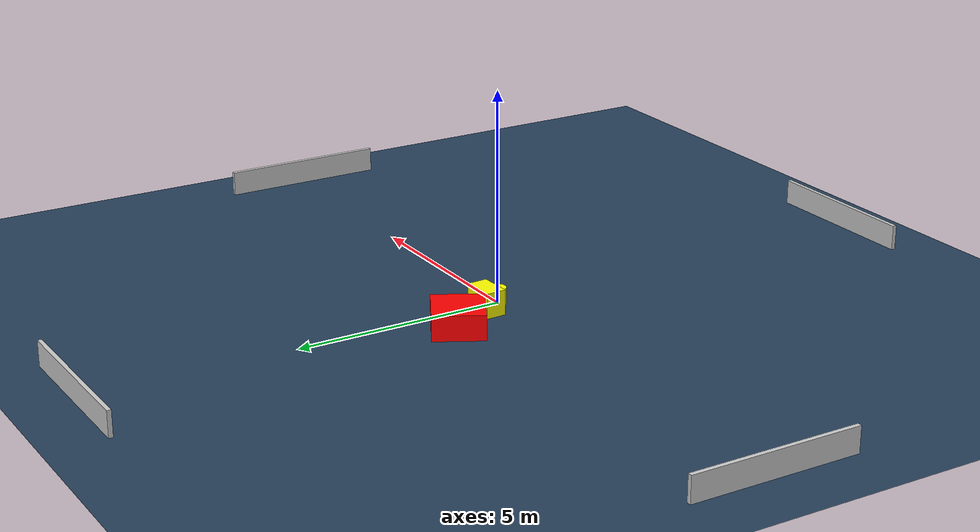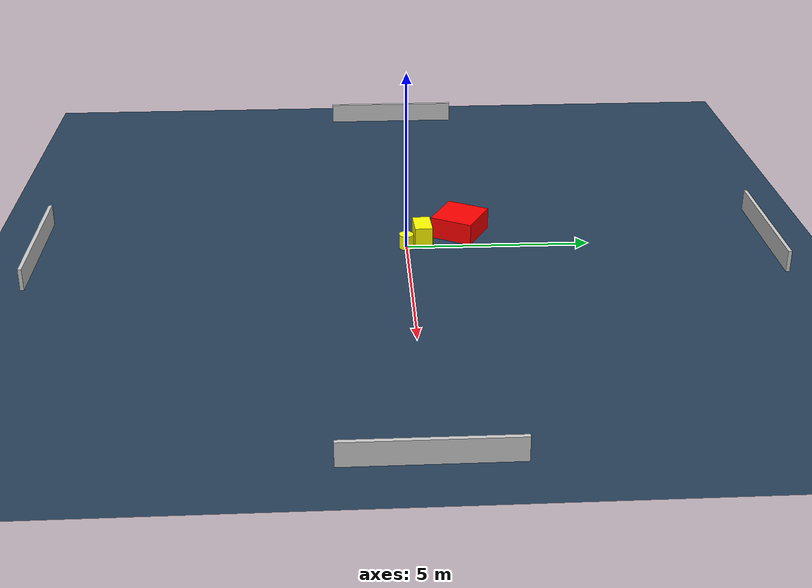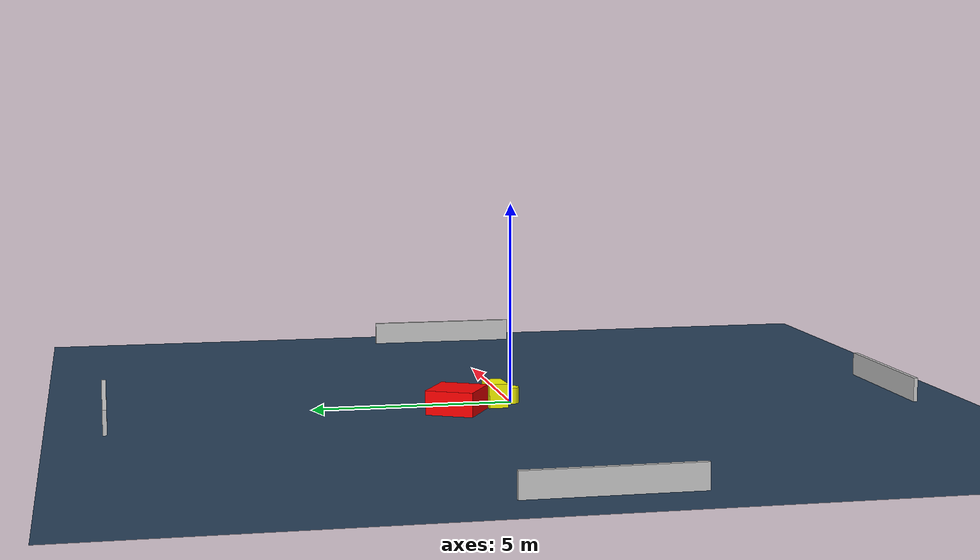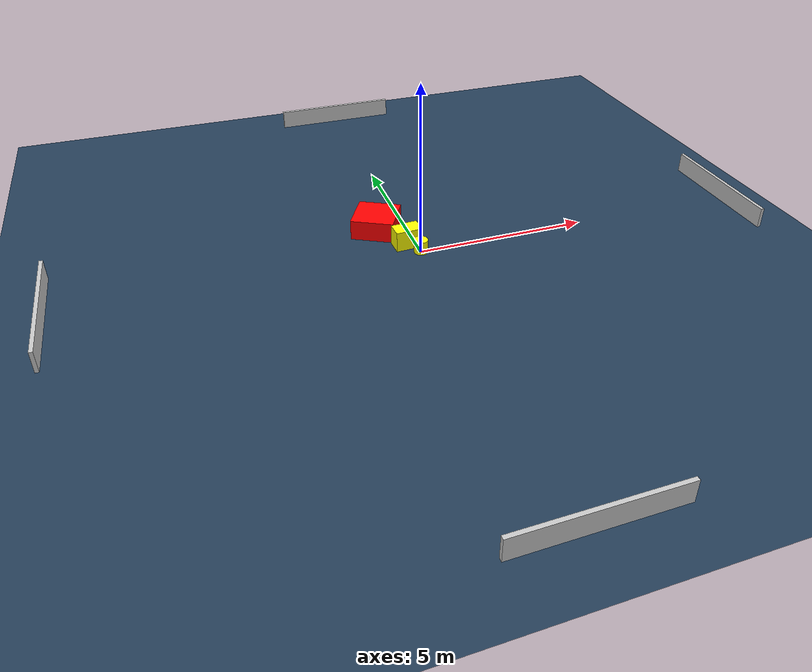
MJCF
<?xml version="1.0" ?>
<mujoco model="generated_environment">
  <option timestep="0.01" integrator="RK4" cone="elliptic"/>
  <default>
    <geom density="1"/>
  </default>
  <asset>
    <texture builtin="gradient" height="3072" name="skybox" rgb1="0.3 0.5 0.7" rgb2="0 0 0" type="skybox" width="512"/>
    <texture builtin="checker" height="300" name="groundplane" rgb1="0.2 0.3 0.4" rgb2="0.1 0.2 0.3" type="2d" width="300"/>
    <material name="groundplane" reflectance="0.2" texrepeat="5 5" texture="groundplane"/>
  </asset>
  <worldbody>
    <light dir="0 0 -1" directional="true" pos="0 0 1.5"/>
    <geom condim="3" friction="0.5 0.005 0.001" material="groundplane" name="floor" pos="0 0 0" size="0 0 0.05" type="plane"/>
    <body name="walls">
      <geom name="wall_1" condim="4" pos="-10.0 0.0 0.3" rgba="0.800000011920929 0.800000011920929 0.800000011920929 1.0" size="0.05 2.0 0.3" type="box"/>
      <geom name="wall_2" condim="4" pos="10.0 0.0 0.3" rgba="0.800000011920929 0.800000011920929 0.800000011920929 1.0" size="0.05 2.0 0.3" type="box"/>
      <geom name="wall_3" condim="4" pos="0.0 -10.0 0.3" rgba="0.800000011920929 0.800000011920929 0.800000011920929 1.0" size="2.0 0.05 0.3" type="box"/>
      <geom name="wall_4" condim="4" pos="0.0 10.0 0.3" rgba="0.800000011920929 0.800000011920929 0.800000011920929 1.0" size="2.0 0.05 0.3" type="box"/>
    </body>
    <body name="robot">
      <joint name="joint_x" type="slide" pos="0 0 0" axis="1 0 0"/>
      <joint name="joint_y" type="slide" pos="0 0 0" axis="0 1 0"/>
      <geom name="robot" type="cylinder" pos="0.0 0.0 0.2" size="0.2 0.2 0.0" mass="5.0" friction="1.0 0.005 0.0001" condim="4" rgba="1.0 1.0 0.0 1.0"/>
    </body>
    <body name="obstacle_1_movable">
      <geom name="obstacle_1_movable" condim="4" pos="-0.27358968832533 0.4590167538506995 0.3" euler="0 0 182.76938880772988" friction="0.0 0.005 0.001" rgba="1.0 1.0 0.0 1.0" size="0.38836117802667336 0.2414608919107714 0.3" type="box" mass="0.1"/>
      <joint type="free"/>
    </body>
    <body name="obstacle_2_static">
      <geom name="obstacle_2_static" condim="4" pos="-0.866609350361787 1.5381009977334377 0.3" euler="0 0 241.54960981668816" friction="0.0 0.005 0.001" rgba="1.0 0.0 0.0 1.0" size="0.6018622632313917 0.6282573741321795 0.3" type="box"/>
    </body>
  </worldbody>
  <actuator>
    <motor name="actuator_x" joint="joint_x" gear="1" ctrlrange="-1 1"/>
    <motor name="actuator_y" joint="joint_y" gear="1" ctrlrange="-1 1"/>
  </actuator>
</mujoco>
